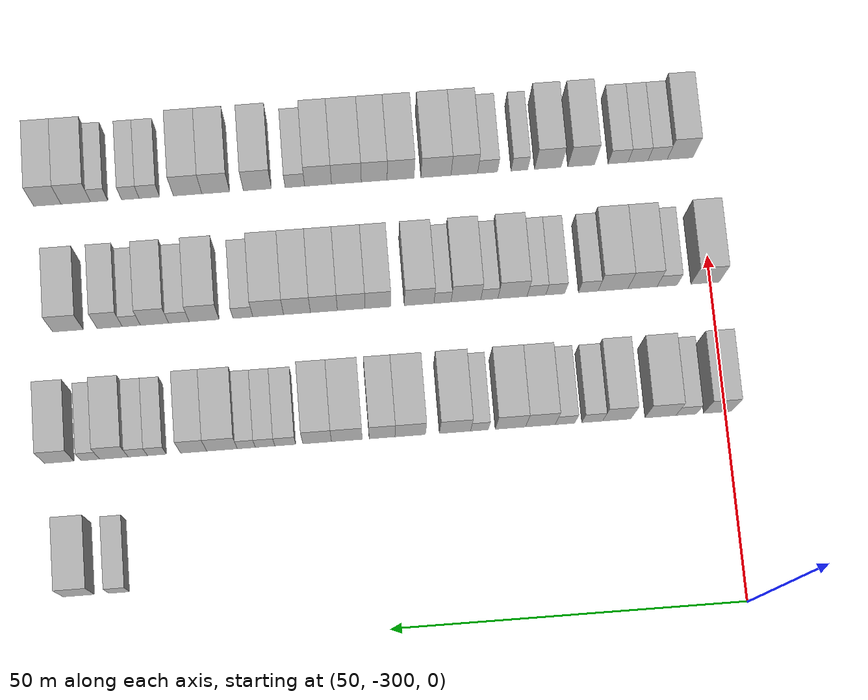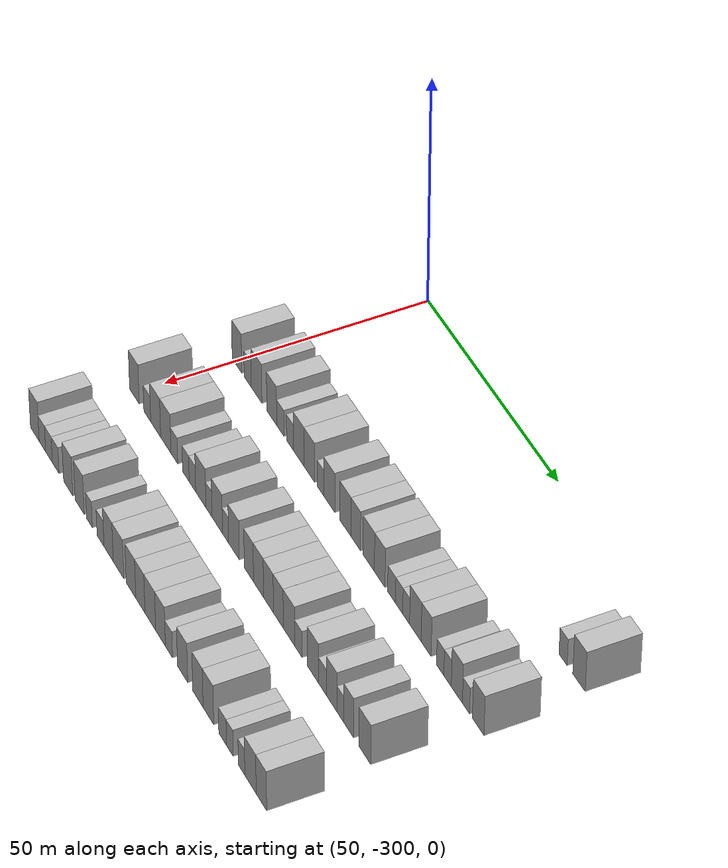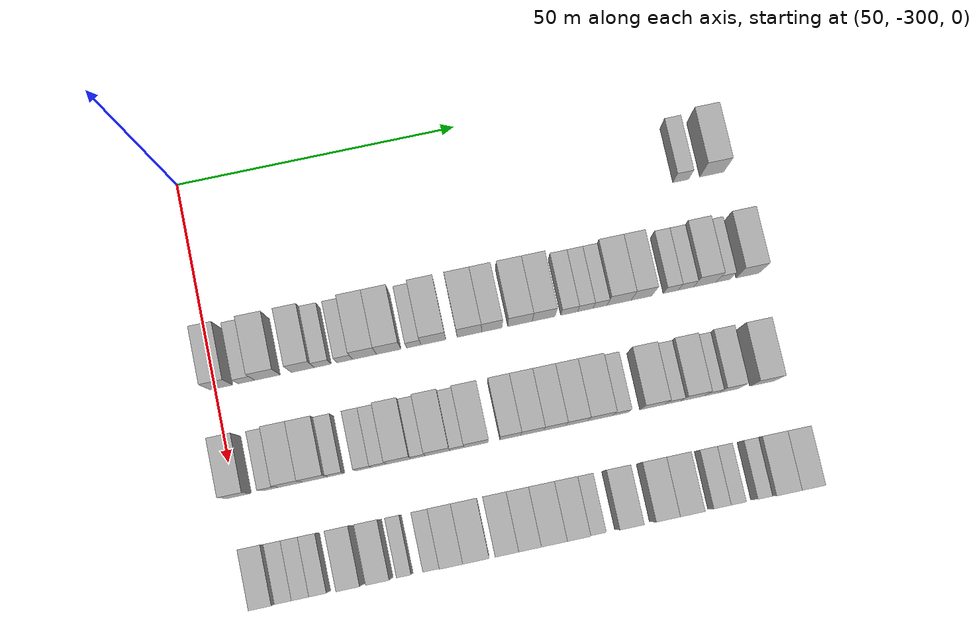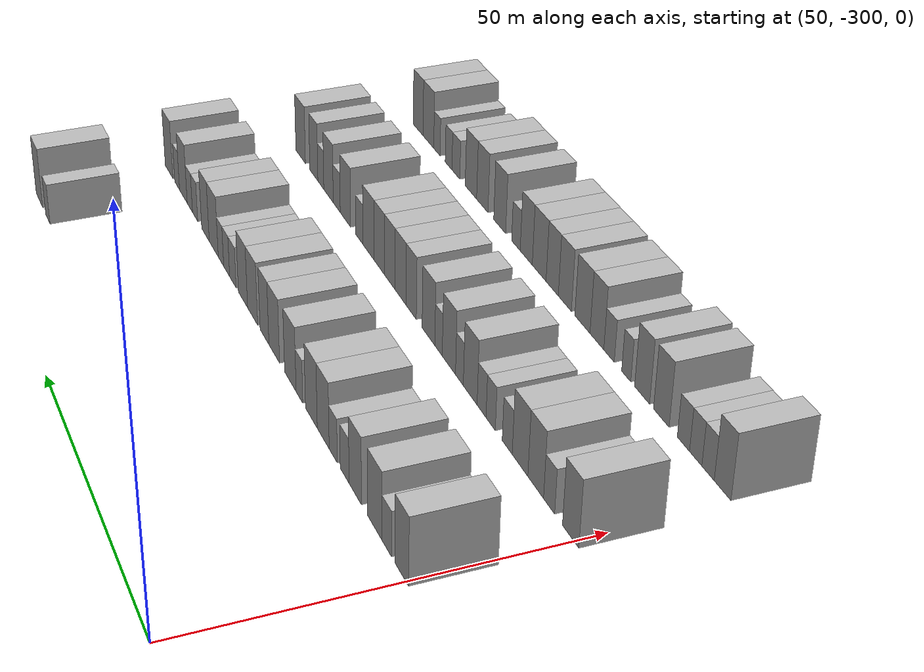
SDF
<sdf version="1.6">
 <world name="default">
  <model name="building_381">
   <static>1</static>
   <pose>63.0000 -212.6887 0 0.000000 0.000000 0.000000</pose>
   <link name="link">
    <pose>0 0 3.00 0 0 0</pose>
    <collision name="collision"><geometry><box><size>10.0000 2.8875 6.0000</size></box></geometry></collision>
    <visual name="visual">
     <cast_shadows>0</cast_shadows>
     <geometry><box><size>10.0000 2.8875 6.0000</size></box></geometry>
     <material>
      <script>
       <uri>model://HANNAS_wall/materials/scripts</uri>
       <uri>model://HANNAS_wall/materials/textures</uri>
       <name>vrc/HANNAS_wall</name>
      </script>
     </material>
    </visual>
   </link>
  </model>
  <model name="building_382">
   <static>1</static>
   <pose>63.0000 -207.0564 0 0.000000 0.000000 0.000000</pose>
   <link name="link">
    <pose>0 0 4.50 0 0 0</pose>
    <collision name="collision"><geometry><box><size>10.0000 4.3771 9.0000</size></box></geometry></collision>
    <visual name="visual">
     <cast_shadows>0</cast_shadows>
     <geometry><box><size>10.0000 4.3771 9.0000</size></box></geometry>
     <material>
      <script>
       <uri>model://HANNAS_wall/materials/scripts</uri>
       <uri>model://HANNAS_wall/materials/textures</uri>
       <name>vrc/HANNAS_wall</name>
      </script>
     </material>
    </visual>
   </link>
  </model>
  <model name="building_523">
   <static>1</static>
   <pose>82.0000 -298.8182 0 0.000000 0.000000 0.000000</pose>
   <link name="link">
    <pose>0 0 4.50 0 0 0</pose>
    <collision name="collision"><geometry><box><size>10.0000 3.9954 9.0000</size></box></geometry></collision>
    <visual name="visual">
     <cast_shadows>0</cast_shadows>
     <geometry><box><size>10.0000 3.9954 9.0000</size></box></geometry>
     <material>
      <script>
       <uri>model://HANNAS_wall/materials/scripts</uri>
       <uri>model://HANNAS_wall/materials/textures</uri>
       <name>vrc/HANNAS_wall</name>
      </script>
     </material>
    </visual>
   </link>
  </model>
  <model name="building_524">
   <static>1</static>
   <pose>82.0000 -294.3517 0 0.000000 0.000000 0.000000</pose>
   <link name="link">
    <pose>0 0 3.00 0 0 0</pose>
    <collision name="collision"><geometry><box><size>10.0000 2.9375 6.0000</size></box></geometry></collision>
    <visual name="visual">
     <cast_shadows>0</cast_shadows>
     <geometry><box><size>10.0000 2.9375 6.0000</size></box></geometry>
     <material>
      <script>
       <uri>model://HANNAS_wall/materials/scripts</uri>
       <uri>model://HANNAS_wall/materials/textures</uri>
       <name>vrc/HANNAS_wall</name>
      </script>
     </material>
    </visual>
   </link>
  </model>
  <model name="building_525">
   <static>1</static>
   <pose>82.0000 -290.6639 0 0.000000 0.000000 0.000000</pose>
   <link name="link">
    <pose>0 0 4.50 0 0 0</pose>
    <collision name="collision"><geometry><box><size>10.0000 4.4381 9.0000</size></box></geometry></collision>
    <visual name="visual">
     <cast_shadows>0</cast_shadows>
     <geometry><box><size>10.0000 4.4381 9.0000</size></box></geometry>
     <material>
      <script>
       <uri>model://HANNAS_wall/materials/scripts</uri>
       <uri>model://HANNAS_wall/materials/textures</uri>
       <name>vrc/HANNAS_wall</name>
      </script>
     </material>
    </visual>
   </link>
  </model>
  <model name="building_526">
   <static>1</static>
   <pose>82.0000 -284.4197 0 0.000000 0.000000 0.000000</pose>
   <link name="link">
    <pose>0 0 4.50 0 0 0</pose>
    <collision name="collision"><geometry><box><size>10.0000 4.0505 9.0000</size></box></geometry></collision>
    <visual name="visual">
     <cast_shadows>0</cast_shadows>
     <geometry><box><size>10.0000 4.0505 9.0000</size></box></geometry>
     <material>
      <script>
       <uri>model://HANNAS_wall/materials/scripts</uri>
       <uri>model://HANNAS_wall/materials/textures</uri>
       <name>vrc/HANNAS_wall</name>
      </script>
     </material>
    </visual>
   </link>
  </model>
  <model name="building_527">
   <static>1</static>
   <pose>82.0000 -280.9048 0 0.000000 0.000000 0.000000</pose>
   <link name="link">
    <pose>0 0 3.00 0 0 0</pose>
    <collision name="collision"><geometry><box><size>10.0000 2.9793 6.0000</size></box></geometry></collision>
    <visual name="visual">
     <cast_shadows>0</cast_shadows>
     <geometry><box><size>10.0000 2.9793 6.0000</size></box></geometry>
     <material>
      <script>
       <uri>model://HANNAS_wall/materials/scripts</uri>
       <uri>model://HANNAS_wall/materials/textures</uri>
       <name>vrc/HANNAS_wall</name>
      </script>
     </material>
    </visual>
   </link>
  </model>
  <model name="building_528">
   <static>1</static>
   <pose>82.0000 -277.0159 0 0.000000 0.000000 0.000000</pose>
   <link name="link">
    <pose>0 0 3.00 0 0 0</pose>
    <collision name="collision"><geometry><box><size>10.0000 2.7986 6.0000</size></box></geometry></collision>
    <visual name="visual">
     <cast_shadows>0</cast_shadows>
     <geometry><box><size>10.0000 2.7986 6.0000</size></box></geometry>
     <material>
      <script>
       <uri>model://HANNAS_wall/materials/scripts</uri>
       <uri>model://HANNAS_wall/materials/textures</uri>
       <name>vrc/HANNAS_wall</name>
      </script>
     </material>
    </visual>
   </link>
  </model>
  <model name="building_529">
   <static>1</static>
   <pose>82.0000 -273.5009 0 0.000000 0.000000 0.000000</pose>
   <link name="link">
    <pose>0 0 4.50 0 0 0</pose>
    <collision name="collision"><geometry><box><size>10.0000 4.2313 9.0000</size></box></geometry></collision>
    <visual name="visual">
     <cast_shadows>0</cast_shadows>
     <geometry><box><size>10.0000 4.2313 9.0000</size></box></geometry>
     <material>
      <script>
       <uri>model://HANNAS_wall/materials/scripts</uri>
       <uri>model://HANNAS_wall/materials/textures</uri>
       <name>vrc/HANNAS_wall</name>
      </script>
     </material>
    </visual>
   </link>
  </model>
  <model name="building_530">
   <static>1</static>
   <pose>82.0000 -269.2243 0 0.000000 0.000000 0.000000</pose>
   <link name="link">
    <pose>0 0 4.50 0 0 0</pose>
    <collision name="collision"><geometry><box><size>10.0000 4.3221 9.0000</size></box></geometry></collision>
    <visual name="visual">
     <cast_shadows>0</cast_shadows>
     <geometry><box><size>10.0000 4.3221 9.0000</size></box></geometry>
     <material>
      <script>
       <uri>model://HANNAS_wall/materials/scripts</uri>
       <uri>model://HANNAS_wall/materials/textures</uri>
       <name>vrc/HANNAS_wall</name>
      </script>
     </material>
    </visual>
   </link>
  </model>
  <model name="building_531">
   <static>1</static>
   <pose>82.0000 -264.7975 0 0.000000 0.000000 0.000000</pose>
   <link name="link">
    <pose>0 0 3.00 0 0 0</pose>
    <collision name="collision"><geometry><box><size>10.0000 2.5313 6.0000</size></box></geometry></collision>
    <visual name="visual">
     <cast_shadows>0</cast_shadows>
     <geometry><box><size>10.0000 2.5313 6.0000</size></box></geometry>
     <material>
      <script>
       <uri>model://HANNAS_wall/materials/scripts</uri>
       <uri>model://HANNAS_wall/materials/textures</uri>
       <name>vrc/HANNAS_wall</name>
      </script>
     </material>
    </visual>
   </link>
  </model>
  <model name="building_532">
   <static>1</static>
   <pose>82.0000 -261.3154 0 0.000000 0.000000 0.000000</pose>
   <link name="link">
    <pose>0 0 4.50 0 0 0</pose>
    <collision name="collision"><geometry><box><size>10.0000 4.4329 9.0000</size></box></geometry></collision>
    <visual name="visual">
     <cast_shadows>0</cast_shadows>
     <geometry><box><size>10.0000 4.4329 9.0000</size></box></geometry>
     <material>
      <script>
       <uri>model://HANNAS_wall/materials/scripts</uri>
       <uri>model://HANNAS_wall/materials/textures</uri>
       <name>vrc/HANNAS_wall</name>
      </script>
     </material>
    </visual>
   </link>
  </model>
  <model name="building_533">
   <static>1</static>
   <pose>82.0000 -254.9344 0 0.000000 0.000000 0.000000</pose>
   <link name="link">
    <pose>0 0 4.50 0 0 0</pose>
    <collision name="collision"><geometry><box><size>10.0000 4.3293 9.0000</size></box></geometry></collision>
    <visual name="visual">
     <cast_shadows>0</cast_shadows>
     <geometry><box><size>10.0000 4.3293 9.0000</size></box></geometry>
     <material>
      <script>
       <uri>model://HANNAS_wall/materials/scripts</uri>
       <uri>model://HANNAS_wall/materials/textures</uri>
       <name>vrc/HANNAS_wall</name>
      </script>
     </material>
    </visual>
   </link>
  </model>
  <model name="building_534">
   <static>1</static>
   <pose>82.0000 -250.9340 0 0.000000 0.000000 0.000000</pose>
   <link name="link">
    <pose>0 0 4.50 0 0 0</pose>
    <collision name="collision"><geometry><box><size>10.0000 3.6715 9.0000</size></box></geometry></collision>
    <visual name="visual">
     <cast_shadows>0</cast_shadows>
     <geometry><box><size>10.0000 3.6715 9.0000</size></box></geometry>
     <material>
      <script>
       <uri>model://HANNAS_wall/materials/scripts</uri>
       <uri>model://HANNAS_wall/materials/textures</uri>
       <name>vrc/HANNAS_wall</name>
      </script>
     </material>
    </visual>
   </link>
  </model>
  <model name="building_535">
   <static>1</static>
   <pose>82.0000 -245.9187 0 0.000000 0.000000 0.000000</pose>
   <link name="link">
    <pose>0 0 4.50 0 0 0</pose>
    <collision name="collision"><geometry><box><size>10.0000 4.3590 9.0000</size></box></geometry></collision>
    <visual name="visual">
     <cast_shadows>0</cast_shadows>
     <geometry><box><size>10.0000 4.3590 9.0000</size></box></geometry>
     <material>
      <script>
       <uri>model://HANNAS_wall/materials/scripts</uri>
       <uri>model://HANNAS_wall/materials/textures</uri>
       <name>vrc/HANNAS_wall</name>
      </script>
     </material>
    </visual>
   </link>
  </model>
  <model name="building_536">
   <static>1</static>
   <pose>82.0000 -241.7025 0 0.000000 0.000000 0.000000</pose>
   <link name="link">
    <pose>0 0 4.50 0 0 0</pose>
    <collision name="collision"><geometry><box><size>10.0000 4.0735 9.0000</size></box></geometry></collision>
    <visual name="visual">
     <cast_shadows>0</cast_shadows>
     <geometry><box><size>10.0000 4.0735 9.0000</size></box></geometry>
     <material>
      <script>
       <uri>model://HANNAS_wall/materials/scripts</uri>
       <uri>model://HANNAS_wall/materials/textures</uri>
       <name>vrc/HANNAS_wall</name>
      </script>
     </material>
    </visual>
   </link>
  </model>
  <model name="building_537">
   <static>1</static>
   <pose>82.0000 -237.1742 0 0.000000 0.000000 0.000000</pose>
   <link name="link">
    <pose>0 0 3.00 0 0 0</pose>
    <collision name="collision"><geometry><box><size>10.0000 2.9829 6.0000</size></box></geometry></collision>
    <visual name="visual">
     <cast_shadows>0</cast_shadows>
     <geometry><box><size>10.0000 2.9829 6.0000</size></box></geometry>
     <material>
      <script>
       <uri>model://HANNAS_wall/materials/scripts</uri>
       <uri>model://HANNAS_wall/materials/textures</uri>
       <name>vrc/HANNAS_wall</name>
      </script>
     </material>
    </visual>
   </link>
  </model>
  <model name="building_538">
   <static>1</static>
   <pose>82.0000 -234.3023 0 0.000000 0.000000 0.000000</pose>
   <link name="link">
    <pose>0 0 3.00 0 0 0</pose>
    <collision name="collision"><geometry><box><size>10.0000 2.7610 6.0000</size></box></geometry></collision>
    <visual name="visual">
     <cast_shadows>0</cast_shadows>
     <geometry><box><size>10.0000 2.7610 6.0000</size></box></geometry>
     <material>
      <script>
       <uri>model://HANNAS_wall/materials/scripts</uri>
       <uri>model://HANNAS_wall/materials/textures</uri>
       <name>vrc/HANNAS_wall</name>
      </script>
     </material>
    </visual>
   </link>
  </model>
  <model name="building_539">
   <static>1</static>
   <pose>82.0000 -231.6471 0 0.000000 0.000000 0.000000</pose>
   <link name="link">
    <pose>0 0 3.00 0 0 0</pose>
    <collision name="collision"><geometry><box><size>10.0000 2.5494 6.0000</size></box></geometry></collision>
    <visual name="visual">
     <cast_shadows>0</cast_shadows>
     <geometry><box><size>10.0000 2.5494 6.0000</size></box></geometry>
     <material>
      <script>
       <uri>model://HANNAS_wall/materials/scripts</uri>
       <uri>model://HANNAS_wall/materials/textures</uri>
       <name>vrc/HANNAS_wall</name>
      </script>
     </material>
    </visual>
   </link>
  </model>
  <model name="building_540">
   <static>1</static>
   <pose>82.0000 -228.2002 0 0.000000 0.000000 0.000000</pose>
   <link name="link">
    <pose>0 0 4.50 0 0 0</pose>
    <collision name="collision"><geometry><box><size>10.0000 4.3445 9.0000</size></box></geometry></collision>
    <visual name="visual">
     <cast_shadows>0</cast_shadows>
     <geometry><box><size>10.0000 4.3445 9.0000</size></box></geometry>
     <material>
      <script>
       <uri>model://HANNAS_wall/materials/scripts</uri>
       <uri>model://HANNAS_wall/materials/textures</uri>
       <name>vrc/HANNAS_wall</name>
      </script>
     </material>
    </visual>
   </link>
  </model>
  <model name="building_541">
   <static>1</static>
   <pose>82.0000 -224.1701 0 0.000000 0.000000 0.000000</pose>
   <link name="link">
    <pose>0 0 4.50 0 0 0</pose>
    <collision name="collision"><geometry><box><size>10.0000 3.7158 9.0000</size></box></geometry></collision>
    <visual name="visual">
     <cast_shadows>0</cast_shadows>
     <geometry><box><size>10.0000 3.7158 9.0000</size></box></geometry>
     <material>
      <script>
       <uri>model://HANNAS_wall/materials/scripts</uri>
       <uri>model://HANNAS_wall/materials/textures</uri>
       <name>vrc/HANNAS_wall</name>
      </script>
     </material>
    </visual>
   </link>
  </model>
  <model name="building_542">
   <static>1</static>
   <pose>82.0000 -218.9694 0 0.000000 0.000000 0.000000</pose>
   <link name="link">
    <pose>0 0 3.00 0 0 0</pose>
    <collision name="collision"><geometry><box><size>10.0000 2.6855 6.0000</size></box></geometry></collision>
    <visual name="visual">
     <cast_shadows>0</cast_shadows>
     <geometry><box><size>10.0000 2.6855 6.0000</size></box></geometry>
     <material>
      <script>
       <uri>model://HANNAS_wall/materials/scripts</uri>
       <uri>model://HANNAS_wall/materials/textures</uri>
       <name>vrc/HANNAS_wall</name>
      </script>
     </material>
    </visual>
   </link>
  </model>
  <model name="building_543">
   <static>1</static>
   <pose>82.0000 -216.2603 0 0.000000 0.000000 0.000000</pose>
   <link name="link">
    <pose>0 0 3.00 0 0 0</pose>
    <collision name="collision"><geometry><box><size>10.0000 2.7329 6.0000</size></box></geometry></collision>
    <visual name="visual">
     <cast_shadows>0</cast_shadows>
     <geometry><box><size>10.0000 2.7329 6.0000</size></box></geometry>
     <material>
      <script>
       <uri>model://HANNAS_wall/materials/scripts</uri>
       <uri>model://HANNAS_wall/materials/textures</uri>
       <name>vrc/HANNAS_wall</name>
      </script>
     </material>
    </visual>
   </link>
  </model>
  <model name="building_544">
   <static>1</static>
   <pose>82.0000 -212.8683 0 0.000000 0.000000 0.000000</pose>
   <link name="link">
    <pose>0 0 4.50 0 0 0</pose>
    <collision name="collision"><geometry><box><size>10.0000 4.0510 9.0000</size></box></geometry></collision>
    <visual name="visual">
     <cast_shadows>0</cast_shadows>
     <geometry><box><size>10.0000 4.0510 9.0000</size></box></geometry>
     <material>
      <script>
       <uri>model://HANNAS_wall/materials/scripts</uri>
       <uri>model://HANNAS_wall/materials/textures</uri>
       <name>vrc/HANNAS_wall</name>
      </script>
     </material>
    </visual>
   </link>
  </model>
  <model name="building_545">
   <static>1</static>
   <pose>82.0000 -209.5404 0 0.000000 0.000000 0.000000</pose>
   <link name="link">
    <pose>0 0 3.00 0 0 0</pose>
    <collision name="collision"><geometry><box><size>10.0000 2.6047 6.0000</size></box></geometry></collision>
    <visual name="visual">
     <cast_shadows>0</cast_shadows>
     <geometry><box><size>10.0000 2.6047 6.0000</size></box></geometry>
     <material>
      <script>
       <uri>model://HANNAS_wall/materials/scripts</uri>
       <uri>model://HANNAS_wall/materials/textures</uri>
       <name>vrc/HANNAS_wall</name>
      </script>
     </material>
    </visual>
   </link>
  </model>
  <model name="building_546">
   <static>1</static>
   <pose>82.0000 -205.1405 0 0.000000 0.000000 0.000000</pose>
   <link name="link">
    <pose>0 0 4.50 0 0 0</pose>
    <collision name="collision"><geometry><box><size>10.0000 4.1951 9.0000</size></box></geometry></collision>
    <visual name="visual">
     <cast_shadows>0</cast_shadows>
     <geometry><box><size>10.0000 4.1951 9.0000</size></box></geometry>
     <material>
      <script>
       <uri>model://HANNAS_wall/materials/scripts</uri>
       <uri>model://HANNAS_wall/materials/textures</uri>
       <name>vrc/HANNAS_wall</name>
      </script>
     </material>
    </visual>
   </link>
  </model>
  <model name="building_685">
   <static>1</static>
   <pose>101.0000 -299.1985 0 0.000000 0.000000 0.000000</pose>
   <link name="link">
    <pose>0 0 4.50 0 0 0</pose>
    <collision name="collision"><geometry><box><size>10.0000 4.1186 9.0000</size></box></geometry></collision>
    <visual name="visual">
     <cast_shadows>0</cast_shadows>
     <geometry><box><size>10.0000 4.1186 9.0000</size></box></geometry>
     <material>
      <script>
       <uri>model://HANNAS_wall/materials/scripts</uri>
       <uri>model://HANNAS_wall/materials/textures</uri>
       <name>vrc/HANNAS_wall</name>
      </script>
     </material>
    </visual>
   </link>
  </model>
  <model name="building_686">
   <static>1</static>
   <pose>101.0000 -293.6868 0 0.000000 0.000000 0.000000</pose>
   <link name="link">
    <pose>0 0 3.00 0 0 0</pose>
    <collision name="collision"><geometry><box><size>10.0000 2.9048 6.0000</size></box></geometry></collision>
    <visual name="visual">
     <cast_shadows>0</cast_shadows>
     <geometry><box><size>10.0000 2.9048 6.0000</size></box></geometry>
     <material>
      <script>
       <uri>model://HANNAS_wall/materials/scripts</uri>
       <uri>model://HANNAS_wall/materials/textures</uri>
       <name>vrc/HANNAS_wall</name>
      </script>
     </material>
    </visual>
   </link>
  </model>
  <model name="building_687">
   <static>1</static>
   <pose>101.0000 -290.1255 0 0.000000 0.000000 0.000000</pose>
   <link name="link">
    <pose>0 0 4.50 0 0 0</pose>
    <collision name="collision"><geometry><box><size>10.0000 4.2178 9.0000</size></box></geometry></collision>
    <visual name="visual">
     <cast_shadows>0</cast_shadows>
     <geometry><box><size>10.0000 4.2178 9.0000</size></box></geometry>
     <material>
      <script>
       <uri>model://HANNAS_wall/materials/scripts</uri>
       <uri>model://HANNAS_wall/materials/textures</uri>
       <name>vrc/HANNAS_wall</name>
      </script>
     </material>
    </visual>
   </link>
  </model>
  <model name="building_688">
   <static>1</static>
   <pose>101.0000 -285.8407 0 0.000000 0.000000 0.000000</pose>
   <link name="link">
    <pose>0 0 4.50 0 0 0</pose>
    <collision name="collision"><geometry><box><size>10.0000 4.3518 9.0000</size></box></geometry></collision>
    <visual name="visual">
     <cast_shadows>0</cast_shadows>
     <geometry><box><size>10.0000 4.3518 9.0000</size></box></geometry>
     <material>
      <script>
       <uri>model://HANNAS_wall/materials/scripts</uri>
       <uri>model://HANNAS_wall/materials/textures</uri>
       <name>vrc/HANNAS_wall</name>
      </script>
     </material>
    </visual>
   </link>
  </model>
  <model name="building_689">
   <static>1</static>
   <pose>101.0000 -282.2444 0 0.000000 0.000000 0.000000</pose>
   <link name="link">
    <pose>0 0 3.00 0 0 0</pose>
    <collision name="collision"><geometry><box><size>10.0000 2.8408 6.0000</size></box></geometry></collision>
    <visual name="visual">
     <cast_shadows>0</cast_shadows>
     <geometry><box><size>10.0000 2.8408 6.0000</size></box></geometry>
     <material>
      <script>
       <uri>model://HANNAS_wall/materials/scripts</uri>
       <uri>model://HANNAS_wall/materials/textures</uri>
       <name>vrc/HANNAS_wall</name>
      </script>
     </material>
    </visual>
   </link>
  </model>
  <model name="building_690">
   <static>1</static>
   <pose>101.0000 -277.4520 0 0.000000 0.000000 0.000000</pose>
   <link name="link">
    <pose>0 0 3.00 0 0 0</pose>
    <collision name="collision"><geometry><box><size>10.0000 2.7440 6.0000</size></box></geometry></collision>
    <visual name="visual">
     <cast_shadows>0</cast_shadows>
     <geometry><box><size>10.0000 2.7440 6.0000</size></box></geometry>
     <material>
      <script>
       <uri>model://HANNAS_wall/materials/scripts</uri>
       <uri>model://HANNAS_wall/materials/textures</uri>
       <name>vrc/HANNAS_wall</name>
      </script>
     </material>
    </visual>
   </link>
  </model>
  <model name="building_691">
   <static>1</static>
   <pose>101.0000 -274.7312 0 0.000000 0.000000 0.000000</pose>
   <link name="link">
    <pose>0 0 3.00 0 0 0</pose>
    <collision name="collision"><geometry><box><size>10.0000 2.6975 6.0000</size></box></geometry></collision>
    <visual name="visual">
     <cast_shadows>0</cast_shadows>
     <geometry><box><size>10.0000 2.6975 6.0000</size></box></geometry>
     <material>
      <script>
       <uri>model://HANNAS_wall/materials/scripts</uri>
       <uri>model://HANNAS_wall/materials/textures</uri>
       <name>vrc/HANNAS_wall</name>
      </script>
     </material>
    </visual>
   </link>
  </model>
  <model name="building_692">
   <static>1</static>
   <pose>101.0000 -271.2598 0 0.000000 0.000000 0.000000</pose>
   <link name="link">
    <pose>0 0 4.50 0 0 0</pose>
    <collision name="collision"><geometry><box><size>10.0000 4.2454 9.0000</size></box></geometry></collision>
    <visual name="visual">
     <cast_shadows>0</cast_shadows>
     <geometry><box><size>10.0000 4.2454 9.0000</size></box></geometry>
     <material>
      <script>
       <uri>model://HANNAS_wall/materials/scripts</uri>
       <uri>model://HANNAS_wall/materials/textures</uri>
       <name>vrc/HANNAS_wall</name>
      </script>
     </material>
    </visual>
   </link>
  </model>
  <model name="building_693">
   <static>1</static>
   <pose>101.0000 -267.9004 0 0.000000 0.000000 0.000000</pose>
   <link name="link">
    <pose>0 0 3.00 0 0 0</pose>
    <collision name="collision"><geometry><box><size>10.0000 2.4733 6.0000</size></box></geometry></collision>
    <visual name="visual">
     <cast_shadows>0</cast_shadows>
     <geometry><box><size>10.0000 2.4733 6.0000</size></box></geometry>
     <material>
      <script>
       <uri>model://HANNAS_wall/materials/scripts</uri>
       <uri>model://HANNAS_wall/materials/textures</uri>
       <name>vrc/HANNAS_wall</name>
      </script>
     </material>
    </visual>
   </link>
  </model>
  <model name="building_694">
   <static>1</static>
   <pose>101.0000 -264.5187 0 0.000000 0.000000 0.000000</pose>
   <link name="link">
    <pose>0 0 4.50 0 0 0</pose>
    <collision name="collision"><geometry><box><size>10.0000 4.2902 9.0000</size></box></geometry></collision>
    <visual name="visual">
     <cast_shadows>0</cast_shadows>
     <geometry><box><size>10.0000 4.2902 9.0000</size></box></geometry>
     <material>
      <script>
       <uri>model://HANNAS_wall/materials/scripts</uri>
       <uri>model://HANNAS_wall/materials/textures</uri>
       <name>vrc/HANNAS_wall</name>
      </script>
     </material>
    </visual>
   </link>
  </model>
  <model name="building_695">
   <static>1</static>
   <pose>101.0000 -261.1385 0 0.000000 0.000000 0.000000</pose>
   <link name="link">
    <pose>0 0 3.00 0 0 0</pose>
    <collision name="collision"><geometry><box><size>10.0000 2.4703 6.0000</size></box></geometry></collision>
    <visual name="visual">
     <cast_shadows>0</cast_shadows>
     <geometry><box><size>10.0000 2.4703 6.0000</size></box></geometry>
     <material>
      <script>
       <uri>model://HANNAS_wall/materials/scripts</uri>
       <uri>model://HANNAS_wall/materials/textures</uri>
       <name>vrc/HANNAS_wall</name>
      </script>
     </material>
    </visual>
   </link>
  </model>
  <model name="building_696">
   <static>1</static>
   <pose>101.0000 -257.7571 0 0.000000 0.000000 0.000000</pose>
   <link name="link">
    <pose>0 0 4.50 0 0 0</pose>
    <collision name="collision"><geometry><box><size>10.0000 4.2925 9.0000</size></box></geometry></collision>
    <visual name="visual">
     <cast_shadows>0</cast_shadows>
     <geometry><box><size>10.0000 4.2925 9.0000</size></box></geometry>
     <material>
      <script>
       <uri>model://HANNAS_wall/materials/scripts</uri>
       <uri>model://HANNAS_wall/materials/textures</uri>
       <name>vrc/HANNAS_wall</name>
      </script>
     </material>
    </visual>
   </link>
  </model>
  <model name="building_697">
   <static>1</static>
   <pose>101.0000 -251.7770 0 0.000000 0.000000 0.000000</pose>
   <link name="link">
    <pose>0 0 4.50 0 0 0</pose>
    <collision name="collision"><geometry><box><size>10.0000 3.6678 9.0000</size></box></geometry></collision>
    <visual name="visual">
     <cast_shadows>0</cast_shadows>
     <geometry><box><size>10.0000 3.6678 9.0000</size></box></geometry>
     <material>
      <script>
       <uri>model://HANNAS_wall/materials/scripts</uri>
       <uri>model://HANNAS_wall/materials/textures</uri>
       <name>vrc/HANNAS_wall</name>
      </script>
     </material>
    </visual>
   </link>
  </model>
  <model name="building_698">
   <static>1</static>
   <pose>101.0000 -247.9479 0 0.000000 0.000000 0.000000</pose>
   <link name="link">
    <pose>0 0 4.50 0 0 0</pose>
    <collision name="collision"><geometry><box><size>10.0000 3.9903 9.0000</size></box></geometry></collision>
    <visual name="visual">
     <cast_shadows>0</cast_shadows>
     <geometry><box><size>10.0000 3.9903 9.0000</size></box></geometry>
     <material>
      <script>
       <uri>model://HANNAS_wall/materials/scripts</uri>
       <uri>model://HANNAS_wall/materials/textures</uri>
       <name>vrc/HANNAS_wall</name>
      </script>
     </material>
    </visual>
   </link>
  </model>
  <model name="building_699">
   <static>1</static>
   <pose>101.0000 -244.0101 0 0.000000 0.000000 0.000000</pose>
   <link name="link">
    <pose>0 0 4.50 0 0 0</pose>
    <collision name="collision"><geometry><box><size>10.0000 3.8854 9.0000</size></box></geometry></collision>
    <visual name="visual">
     <cast_shadows>0</cast_shadows>
     <geometry><box><size>10.0000 3.8854 9.0000</size></box></geometry>
     <material>
      <script>
       <uri>model://HANNAS_wall/materials/scripts</uri>
       <uri>model://HANNAS_wall/materials/textures</uri>
       <name>vrc/HANNAS_wall</name>
      </script>
     </material>
    </visual>
   </link>
  </model>
  <model name="building_700">
   <static>1</static>
   <pose>101.0000 -240.1299 0 0.000000 0.000000 0.000000</pose>
   <link name="link">
    <pose>0 0 4.50 0 0 0</pose>
    <collision name="collision"><geometry><box><size>10.0000 3.8751 9.0000</size></box></geometry></collision>
    <visual name="visual">
     <cast_shadows>0</cast_shadows>
     <geometry><box><size>10.0000 3.8751 9.0000</size></box></geometry>
     <material>
      <script>
       <uri>model://HANNAS_wall/materials/scripts</uri>
       <uri>model://HANNAS_wall/materials/textures</uri>
       <name>vrc/HANNAS_wall</name>
      </script>
     </material>
    </visual>
   </link>
  </model>
  <model name="building_701">
   <static>1</static>
   <pose>101.0000 -235.9747 0 0.000000 0.000000 0.000000</pose>
   <link name="link">
    <pose>0 0 4.50 0 0 0</pose>
    <collision name="collision"><geometry><box><size>10.0000 4.4351 9.0000</size></box></geometry></collision>
    <visual name="visual">
     <cast_shadows>0</cast_shadows>
     <geometry><box><size>10.0000 4.4351 9.0000</size></box></geometry>
     <material>
      <script>
       <uri>model://HANNAS_wall/materials/scripts</uri>
       <uri>model://HANNAS_wall/materials/textures</uri>
       <name>vrc/HANNAS_wall</name>
      </script>
     </material>
    </visual>
   </link>
  </model>
  <model name="building_702">
   <static>1</static>
   <pose>101.0000 -232.3253 0 0.000000 0.000000 0.000000</pose>
   <link name="link">
    <pose>0 0 3.00 0 0 0</pose>
    <collision name="collision"><geometry><box><size>10.0000 2.8637 6.0000</size></box></geometry></collision>
    <visual name="visual">
     <cast_shadows>0</cast_shadows>
     <geometry><box><size>10.0000 2.8637 6.0000</size></box></geometry>
     <material>
      <script>
       <uri>model://HANNAS_wall/materials/scripts</uri>
       <uri>model://HANNAS_wall/materials/textures</uri>
       <name>vrc/HANNAS_wall</name>
      </script>
     </material>
    </visual>
   </link>
  </model>
  <model name="building_703">
   <static>1</static>
   <pose>101.0000 -226.7403 0 0.000000 0.000000 0.000000</pose>
   <link name="link">
    <pose>0 0 4.50 0 0 0</pose>
    <collision name="collision"><geometry><box><size>10.0000 4.3064 9.0000</size></box></geometry></collision>
    <visual name="visual">
     <cast_shadows>0</cast_shadows>
     <geometry><box><size>10.0000 4.3064 9.0000</size></box></geometry>
     <material>
      <script>
       <uri>model://HANNAS_wall/materials/scripts</uri>
       <uri>model://HANNAS_wall/materials/textures</uri>
       <name>vrc/HANNAS_wall</name>
      </script>
     </material>
    </visual>
   </link>
  </model>
  <model name="building_704">
   <static>1</static>
   <pose>101.0000 -223.1153 0 0.000000 0.000000 0.000000</pose>
   <link name="link">
    <pose>0 0 3.00 0 0 0</pose>
    <collision name="collision"><geometry><box><size>10.0000 2.9436 6.0000</size></box></geometry></collision>
    <visual name="visual">
     <cast_shadows>0</cast_shadows>
     <geometry><box><size>10.0000 2.9436 6.0000</size></box></geometry>
     <material>
      <script>
       <uri>model://HANNAS_wall/materials/scripts</uri>
       <uri>model://HANNAS_wall/materials/textures</uri>
       <name>vrc/HANNAS_wall</name>
      </script>
     </material>
    </visual>
   </link>
  </model>
  <model name="building_705">
   <static>1</static>
   <pose>101.0000 -219.6113 0 0.000000 0.000000 0.000000</pose>
   <link name="link">
    <pose>0 0 4.50 0 0 0</pose>
    <collision name="collision"><geometry><box><size>10.0000 4.0643 9.0000</size></box></geometry></collision>
    <visual name="visual">
     <cast_shadows>0</cast_shadows>
     <geometry><box><size>10.0000 4.0643 9.0000</size></box></geometry>
     <material>
      <script>
       <uri>model://HANNAS_wall/materials/scripts</uri>
       <uri>model://HANNAS_wall/materials/textures</uri>
       <name>vrc/HANNAS_wall</name>
      </script>
     </material>
    </visual>
   </link>
  </model>
  <model name="building_706">
   <static>1</static>
   <pose>101.0000 -216.2747 0 0.000000 0.000000 0.000000</pose>
   <link name="link">
    <pose>0 0 3.00 0 0 0</pose>
    <collision name="collision"><geometry><box><size>10.0000 2.6088 6.0000</size></box></geometry></collision>
    <visual name="visual">
     <cast_shadows>0</cast_shadows>
     <geometry><box><size>10.0000 2.6088 6.0000</size></box></geometry>
     <material>
      <script>
       <uri>model://HANNAS_wall/materials/scripts</uri>
       <uri>model://HANNAS_wall/materials/textures</uri>
       <name>vrc/HANNAS_wall</name>
      </script>
     </material>
    </visual>
   </link>
  </model>
  <model name="building_707">
   <static>1</static>
   <pose>101.0000 -213.1649 0 0.000000 0.000000 0.000000</pose>
   <link name="link">
    <pose>0 0 4.50 0 0 0</pose>
    <collision name="collision"><geometry><box><size>10.0000 3.6108 9.0000</size></box></geometry></collision>
    <visual name="visual">
     <cast_shadows>0</cast_shadows>
     <geometry><box><size>10.0000 3.6108 9.0000</size></box></geometry>
     <material>
      <script>
       <uri>model://HANNAS_wall/materials/scripts</uri>
       <uri>model://HANNAS_wall/materials/textures</uri>
       <name>vrc/HANNAS_wall</name>
      </script>
     </material>
    </visual>
   </link>
  </model>
  <model name="building_708">
   <static>1</static>
   <pose>101.0000 -207.1610 0 0.000000 0.000000 0.000000</pose>
   <link name="link">
    <pose>0 0 4.50 0 0 0</pose>
    <collision name="collision"><geometry><box><size>10.0000 4.3969 9.0000</size></box></geometry></collision>
    <visual name="visual">
     <cast_shadows>0</cast_shadows>
     <geometry><box><size>10.0000 4.3969 9.0000</size></box></geometry>
     <material>
      <script>
       <uri>model://HANNAS_wall/materials/scripts</uri>
       <uri>model://HANNAS_wall/materials/textures</uri>
       <name>vrc/HANNAS_wall</name>
      </script>
     </material>
    </visual>
   </link>
  </model>
  <model name="building_858">
   <static>1</static>
   <pose>120.0000 -297.6713 0 0.000000 0.000000 0.000000</pose>
   <link name="link">
    <pose>0 0 4.50 0 0 0</pose>
    <collision name="collision"><geometry><box><size>10.0000 3.7949 9.0000</size></box></geometry></collision>
    <visual name="visual">
     <cast_shadows>0</cast_shadows>
     <geometry><box><size>10.0000 3.7949 9.0000</size></box></geometry>
     <material>
      <script>
       <uri>model://HANNAS_wall/materials/scripts</uri>
       <uri>model://HANNAS_wall/materials/textures</uri>
       <name>vrc/HANNAS_wall</name>
      </script>
     </material>
    </visual>
   </link>
  </model>
  <model name="building_859">
   <static>1</static>
   <pose>120.0000 -294.3442 0 0.000000 0.000000 0.000000</pose>
   <link name="link">
    <pose>0 0 3.00 0 0 0</pose>
    <collision name="collision"><geometry><box><size>10.0000 2.8592 6.0000</size></box></geometry></collision>
    <visual name="visual">
     <cast_shadows>0</cast_shadows>
     <geometry><box><size>10.0000 2.8592 6.0000</size></box></geometry>
     <material>
      <script>
       <uri>model://HANNAS_wall/materials/scripts</uri>
       <uri>model://HANNAS_wall/materials/textures</uri>
       <name>vrc/HANNAS_wall</name>
      </script>
     </material>
    </visual>
   </link>
  </model>
  <model name="building_860">
   <static>1</static>
   <pose>120.0000 -291.4565 0 0.000000 0.000000 0.000000</pose>
   <link name="link">
    <pose>0 0 3.00 0 0 0</pose>
    <collision name="collision"><geometry><box><size>10.0000 2.9164 6.0000</size></box></geometry></collision>
    <visual name="visual">
     <cast_shadows>0</cast_shadows>
     <geometry><box><size>10.0000 2.9164 6.0000</size></box></geometry>
     <material>
      <script>
       <uri>model://HANNAS_wall/materials/scripts</uri>
       <uri>model://HANNAS_wall/materials/textures</uri>
       <name>vrc/HANNAS_wall</name>
      </script>
     </material>
    </visual>
   </link>
  </model>
  <model name="building_861">
   <static>1</static>
   <pose>120.0000 -288.5305 0 0.000000 0.000000 0.000000</pose>
   <link name="link">
    <pose>0 0 3.00 0 0 0</pose>
    <collision name="collision"><geometry><box><size>10.0000 2.9356 6.0000</size></box></geometry></collision>
    <visual name="visual">
     <cast_shadows>0</cast_shadows>
     <geometry><box><size>10.0000 2.9356 6.0000</size></box></geometry>
     <material>
      <script>
       <uri>model://HANNAS_wall/materials/scripts</uri>
       <uri>model://HANNAS_wall/materials/textures</uri>
       <name>vrc/HANNAS_wall</name>
      </script>
     </material>
    </visual>
   </link>
  </model>
  <model name="building_862">
   <static>1</static>
   <pose>120.0000 -283.0992 0 0.000000 0.000000 0.000000</pose>
   <link name="link">
    <pose>0 0 4.50 0 0 0</pose>
    <collision name="collision"><geometry><box><size>10.0000 3.9271 9.0000</size></box></geometry></collision>
    <visual name="visual">
     <cast_shadows>0</cast_shadows>
     <geometry><box><size>10.0000 3.9271 9.0000</size></box></geometry>
     <material>
      <script>
       <uri>model://HANNAS_wall/materials/scripts</uri>
       <uri>model://HANNAS_wall/materials/textures</uri>
       <name>vrc/HANNAS_wall</name>
      </script>
     </material>
    </visual>
   </link>
  </model>
  <model name="building_863">
   <static>1</static>
   <pose>120.0000 -278.1868 0 0.000000 0.000000 0.000000</pose>
   <link name="link">
    <pose>0 0 4.50 0 0 0</pose>
    <collision name="collision"><geometry><box><size>10.0000 3.8976 9.0000</size></box></geometry></collision>
    <visual name="visual">
     <cast_shadows>0</cast_shadows>
     <geometry><box><size>10.0000 3.8976 9.0000</size></box></geometry>
     <material>
      <script>
       <uri>model://HANNAS_wall/materials/scripts</uri>
       <uri>model://HANNAS_wall/materials/textures</uri>
       <name>vrc/HANNAS_wall</name>
      </script>
     </material>
    </visual>
   </link>
  </model>
  <model name="building_864">
   <static>1</static>
   <pose>120.0000 -274.0135 0 0.000000 0.000000 0.000000</pose>
   <link name="link">
    <pose>0 0 3.00 0 0 0</pose>
    <collision name="collision"><geometry><box><size>10.0000 2.4492 6.0000</size></box></geometry></collision>
    <visual name="visual">
     <cast_shadows>0</cast_shadows>
     <geometry><box><size>10.0000 2.4492 6.0000</size></box></geometry>
     <material>
      <script>
       <uri>model://HANNAS_wall/materials/scripts</uri>
       <uri>model://HANNAS_wall/materials/textures</uri>
       <name>vrc/HANNAS_wall</name>
      </script>
     </material>
    </visual>
   </link>
  </model>
  <model name="building_865">
   <static>1</static>
   <pose>120.0000 -269.3360 0 0.000000 0.000000 0.000000</pose>
   <link name="link">
    <pose>0 0 3.00 0 0 0</pose>
    <collision name="collision"><geometry><box><size>10.0000 2.9058 6.0000</size></box></geometry></collision>
    <visual name="visual">
     <cast_shadows>0</cast_shadows>
     <geometry><box><size>10.0000 2.9058 6.0000</size></box></geometry>
     <material>
      <script>
       <uri>model://HANNAS_wall/materials/scripts</uri>
       <uri>model://HANNAS_wall/materials/textures</uri>
       <name>vrc/HANNAS_wall</name>
      </script>
     </material>
    </visual>
   </link>
  </model>
  <model name="building_866">
   <static>1</static>
   <pose>120.0000 -265.9263 0 0.000000 0.000000 0.000000</pose>
   <link name="link">
    <pose>0 0 4.50 0 0 0</pose>
    <collision name="collision"><geometry><box><size>10.0000 3.9136 9.0000</size></box></geometry></collision>
    <visual name="visual">
     <cast_shadows>0</cast_shadows>
     <geometry><box><size>10.0000 3.9136 9.0000</size></box></geometry>
     <material>
      <script>
       <uri>model://HANNAS_wall/materials/scripts</uri>
       <uri>model://HANNAS_wall/materials/textures</uri>
       <name>vrc/HANNAS_wall</name>
      </script>
     </material>
    </visual>
   </link>
  </model>
  <model name="building_867">
   <static>1</static>
   <pose>120.0000 -261.7655 0 0.000000 0.000000 0.000000</pose>
   <link name="link">
    <pose>0 0 4.50 0 0 0</pose>
    <collision name="collision"><geometry><box><size>10.0000 4.4080 9.0000</size></box></geometry></collision>
    <visual name="visual">
     <cast_shadows>0</cast_shadows>
     <geometry><box><size>10.0000 4.4080 9.0000</size></box></geometry>
     <material>
      <script>
       <uri>model://HANNAS_wall/materials/scripts</uri>
       <uri>model://HANNAS_wall/materials/textures</uri>
       <name>vrc/HANNAS_wall</name>
      </script>
     </material>
    </visual>
   </link>
  </model>
  <model name="building_868">
   <static>1</static>
   <pose>120.0000 -256.5852 0 0.000000 0.000000 0.000000</pose>
   <link name="link">
    <pose>0 0 4.50 0 0 0</pose>
    <collision name="collision"><geometry><box><size>10.0000 3.9526 9.0000</size></box></geometry></collision>
    <visual name="visual">
     <cast_shadows>0</cast_shadows>
     <geometry><box><size>10.0000 3.9526 9.0000</size></box></geometry>
     <material>
      <script>
       <uri>model://HANNAS_wall/materials/scripts</uri>
       <uri>model://HANNAS_wall/materials/textures</uri>
       <name>vrc/HANNAS_wall</name>
      </script>
     </material>
    </visual>
   </link>
  </model>
  <model name="building_869">
   <static>1</static>
   <pose>120.0000 -252.7152 0 0.000000 0.000000 0.000000</pose>
   <link name="link">
    <pose>0 0 4.50 0 0 0</pose>
    <collision name="collision"><geometry><box><size>10.0000 3.7872 9.0000</size></box></geometry></collision>
    <visual name="visual">
     <cast_shadows>0</cast_shadows>
     <geometry><box><size>10.0000 3.7872 9.0000</size></box></geometry>
     <material>
      <script>
       <uri>model://HANNAS_wall/materials/scripts</uri>
       <uri>model://HANNAS_wall/materials/textures</uri>
       <name>vrc/HANNAS_wall</name>
      </script>
     </material>
    </visual>
   </link>
  </model>
  <model name="building_870">
   <static>1</static>
   <pose>120.0000 -248.6433 0 0.000000 0.000000 0.000000</pose>
   <link name="link">
    <pose>0 0 4.50 0 0 0</pose>
    <collision name="collision"><geometry><box><size>10.0000 4.3565 9.0000</size></box></geometry></collision>
    <visual name="visual">
     <cast_shadows>0</cast_shadows>
     <geometry><box><size>10.0000 4.3565 9.0000</size></box></geometry>
     <material>
      <script>
       <uri>model://HANNAS_wall/materials/scripts</uri>
       <uri>model://HANNAS_wall/materials/textures</uri>
       <name>vrc/HANNAS_wall</name>
      </script>
     </material>
    </visual>
   </link>
  </model>
  <model name="building_871">
   <static>1</static>
   <pose>120.0000 -244.5003 0 0.000000 0.000000 0.000000</pose>
   <link name="link">
    <pose>0 0 4.50 0 0 0</pose>
    <collision name="collision"><geometry><box><size>10.0000 3.9296 9.0000</size></box></geometry></collision>
    <visual name="visual">
     <cast_shadows>0</cast_shadows>
     <geometry><box><size>10.0000 3.9296 9.0000</size></box></geometry>
     <material>
      <script>
       <uri>model://HANNAS_wall/materials/scripts</uri>
       <uri>model://HANNAS_wall/materials/textures</uri>
       <name>vrc/HANNAS_wall</name>
      </script>
     </material>
    </visual>
   </link>
  </model>
  <model name="building_872">
   <static>1</static>
   <pose>120.0000 -241.1042 0 0.000000 0.000000 0.000000</pose>
   <link name="link">
    <pose>0 0 3.00 0 0 0</pose>
    <collision name="collision"><geometry><box><size>10.0000 2.8625 6.0000</size></box></geometry></collision>
    <visual name="visual">
     <cast_shadows>0</cast_shadows>
     <geometry><box><size>10.0000 2.8625 6.0000</size></box></geometry>
     <material>
      <script>
       <uri>model://HANNAS_wall/materials/scripts</uri>
       <uri>model://HANNAS_wall/materials/textures</uri>
       <name>vrc/HANNAS_wall</name>
      </script>
     </material>
    </visual>
   </link>
  </model>
  <model name="building_873">
   <static>1</static>
   <pose>120.0000 -235.6205 0 0.000000 0.000000 0.000000</pose>
   <link name="link">
    <pose>0 0 4.50 0 0 0</pose>
    <collision name="collision"><geometry><box><size>10.0000 4.1049 9.0000</size></box></geometry></collision>
    <visual name="visual">
     <cast_shadows>0</cast_shadows>
     <geometry><box><size>10.0000 4.1049 9.0000</size></box></geometry>
     <material>
      <script>
       <uri>model://HANNAS_wall/materials/scripts</uri>
       <uri>model://HANNAS_wall/materials/textures</uri>
       <name>vrc/HANNAS_wall</name>
      </script>
     </material>
    </visual>
   </link>
  </model>
  <model name="building_874">
   <static>1</static>
   <pose>120.0000 -229.5339 0 0.000000 0.000000 0.000000</pose>
   <link name="link">
    <pose>0 0 4.50 0 0 0</pose>
    <collision name="collision"><geometry><box><size>10.0000 4.0684 9.0000</size></box></geometry></collision>
    <visual name="visual">
     <cast_shadows>0</cast_shadows>
     <geometry><box><size>10.0000 4.0684 9.0000</size></box></geometry>
     <material>
      <script>
       <uri>model://HANNAS_wall/materials/scripts</uri>
       <uri>model://HANNAS_wall/materials/textures</uri>
       <name>vrc/HANNAS_wall</name>
      </script>
     </material>
    </visual>
   </link>
  </model>
  <model name="building_875">
   <static>1</static>
   <pose>120.0000 -225.4156 0 0.000000 0.000000 0.000000</pose>
   <link name="link">
    <pose>0 0 4.50 0 0 0</pose>
    <collision name="collision"><geometry><box><size>10.0000 4.1682 9.0000</size></box></geometry></collision>
    <visual name="visual">
     <cast_shadows>0</cast_shadows>
     <geometry><box><size>10.0000 4.1682 9.0000</size></box></geometry>
     <material>
      <script>
       <uri>model://HANNAS_wall/materials/scripts</uri>
       <uri>model://HANNAS_wall/materials/textures</uri>
       <name>vrc/HANNAS_wall</name>
      </script>
     </material>
    </visual>
   </link>
  </model>
  <model name="building_876">
   <static>1</static>
   <pose>120.0000 -219.8391 0 0.000000 0.000000 0.000000</pose>
   <link name="link">
    <pose>0 0 3.00 0 0 0</pose>
    <collision name="collision"><geometry><box><size>10.0000 2.9849 6.0000</size></box></geometry></collision>
    <visual name="visual">
     <cast_shadows>0</cast_shadows>
     <geometry><box><size>10.0000 2.9849 6.0000</size></box></geometry>
     <material>
      <script>
       <uri>model://HANNAS_wall/materials/scripts</uri>
       <uri>model://HANNAS_wall/materials/textures</uri>
       <name>vrc/HANNAS_wall</name>
      </script>
     </material>
    </visual>
   </link>
  </model>
  <model name="building_877">
   <static>1</static>
   <pose>120.0000 -217.0574 0 0.000000 0.000000 0.000000</pose>
   <link name="link">
    <pose>0 0 3.00 0 0 0</pose>
    <collision name="collision"><geometry><box><size>10.0000 2.5784 6.0000</size></box></geometry></collision>
    <visual name="visual">
     <cast_shadows>0</cast_shadows>
     <geometry><box><size>10.0000 2.5784 6.0000</size></box></geometry>
     <material>
      <script>
       <uri>model://HANNAS_wall/materials/scripts</uri>
       <uri>model://HANNAS_wall/materials/textures</uri>
       <name>vrc/HANNAS_wall</name>
      </script>
     </material>
    </visual>
   </link>
  </model>
  <model name="building_878">
   <static>1</static>
   <pose>120.0000 -212.5166 0 0.000000 0.000000 0.000000</pose>
   <link name="link">
    <pose>0 0 3.00 0 0 0</pose>
    <collision name="collision"><geometry><box><size>10.0000 2.5034 6.0000</size></box></geometry></collision>
    <visual name="visual">
     <cast_shadows>0</cast_shadows>
     <geometry><box><size>10.0000 2.5034 6.0000</size></box></geometry>
     <material>
      <script>
       <uri>model://HANNAS_wall/materials/scripts</uri>
       <uri>model://HANNAS_wall/materials/textures</uri>
       <name>vrc/HANNAS_wall</name>
      </script>
     </material>
    </visual>
   </link>
  </model>
  <model name="building_879">
   <static>1</static>
   <pose>120.0000 -209.1025 0 0.000000 0.000000 0.000000</pose>
   <link name="link">
    <pose>0 0 4.50 0 0 0</pose>
    <collision name="collision"><geometry><box><size>10.0000 4.3248 9.0000</size></box></geometry></collision>
    <visual name="visual">
     <cast_shadows>0</cast_shadows>
     <geometry><box><size>10.0000 4.3248 9.0000</size></box></geometry>
     <material>
      <script>
       <uri>model://HANNAS_wall/materials/scripts</uri>
       <uri>model://HANNAS_wall/materials/textures</uri>
       <name>vrc/HANNAS_wall</name>
      </script>
     </material>
    </visual>
   </link>
  </model>
  <model name="building_880">
   <static>1</static>
   <pose>120.0000 -204.9479 0 0.000000 0.000000 0.000000</pose>
   <link name="link">
    <pose>0 0 4.50 0 0 0</pose>
    <collision name="collision"><geometry><box><size>10.0000 3.9843 9.0000</size></box></geometry></collision>
    <visual name="visual">
     <cast_shadows>0</cast_shadows>
     <geometry><box><size>10.0000 3.9843 9.0000</size></box></geometry>
     <material>
      <script>
       <uri>model://HANNAS_wall/materials/scripts</uri>
       <uri>model://HANNAS_wall/materials/textures</uri>
       <name>vrc/HANNAS_wall</name>
      </script>
     </material>
    </visual>
   </link>
  </model>
 </world>
</sdf>
